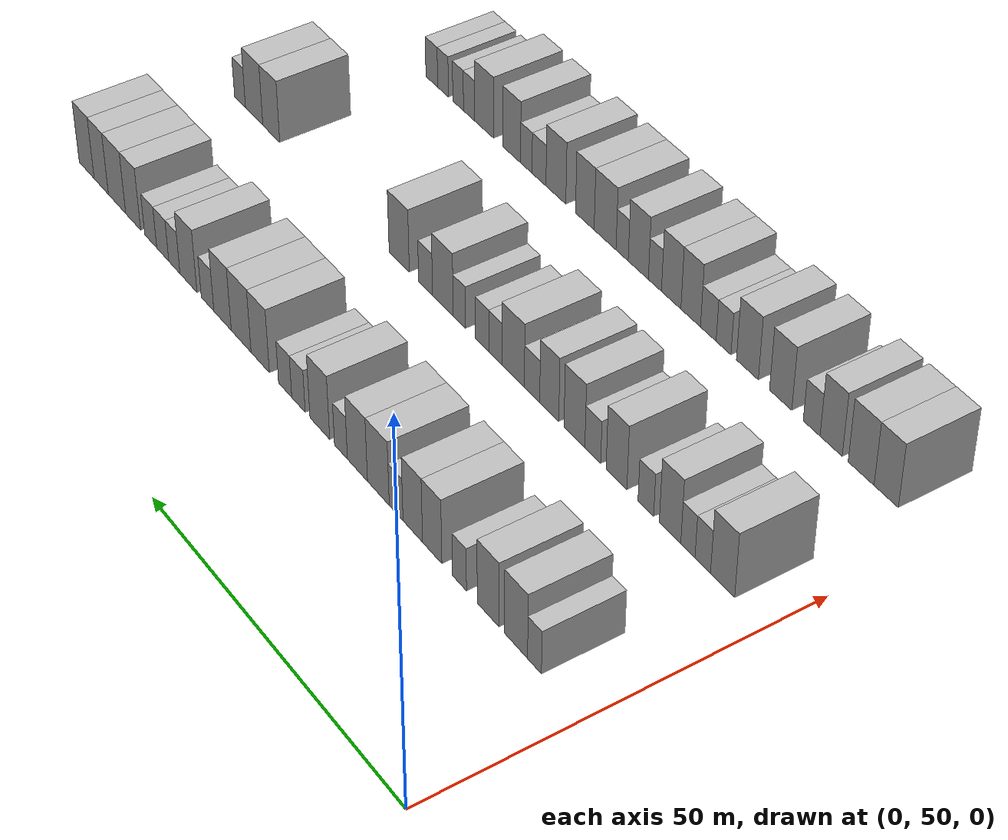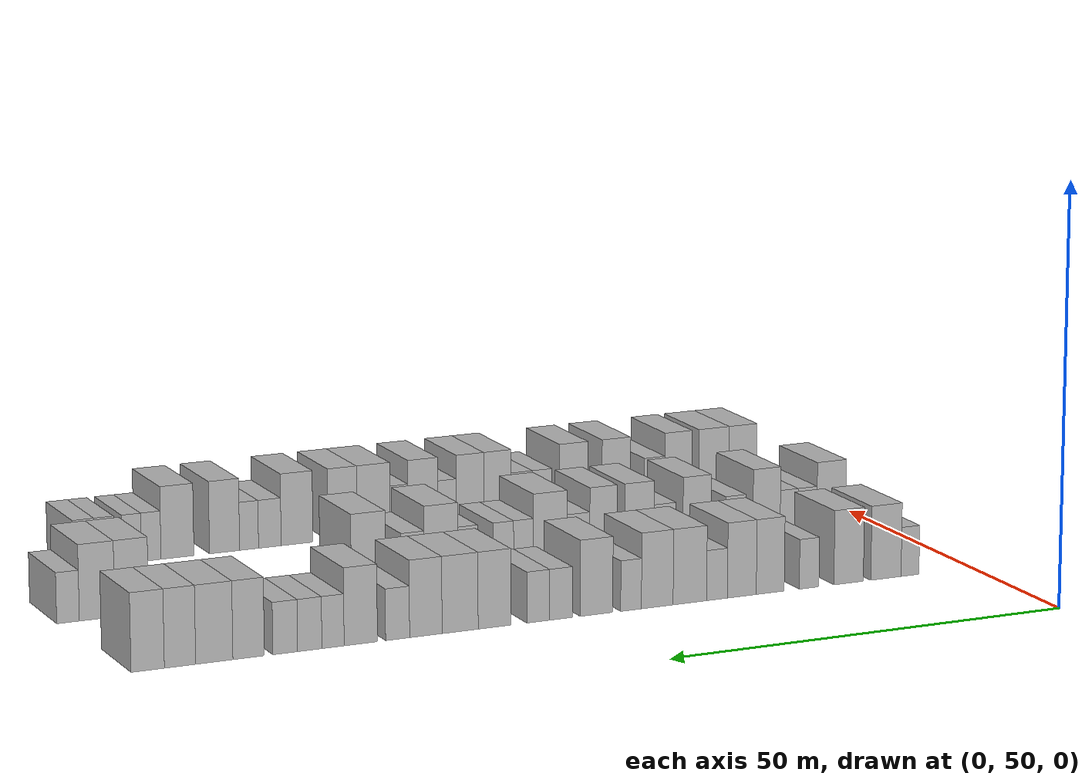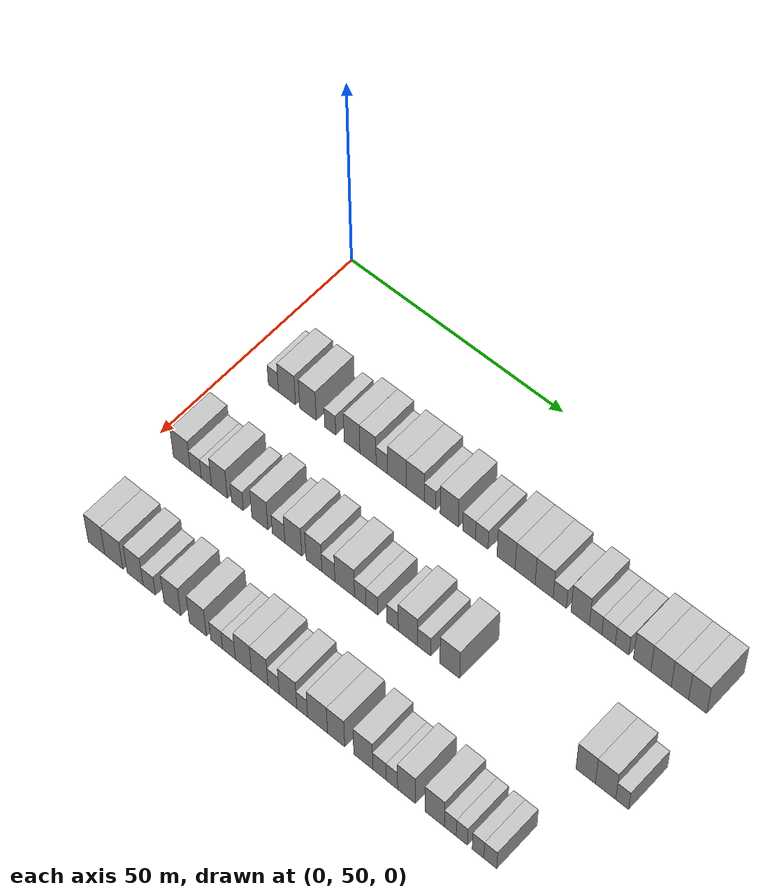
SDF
<sdf version="1.6">
 <world name="default">
  <model name="building_72">
   <static>1</static>
   <pose>25.0000 58.3837 0 0.000000 0.000000 0.000000</pose>
   <link name="link">
    <pose>0 0 3.00 0 0 0</pose>
    <collision name="collision"><geometry><box><size>10.0000 2.4336 6.0000</size></box></geometry></collision>
    <visual name="visual">
     <cast_shadows>0</cast_shadows>
     <geometry><box><size>10.0000 2.4336 6.0000</size></box></geometry>
     <material>
      <script>
       <uri>model://HANNAS_wall/materials/scripts</uri>
       <uri>model://HANNAS_wall/materials/textures</uri>
       <name>vrc/HANNAS_wall</name>
      </script>
     </material>
    </visual>
   </link>
  </model>
  <model name="building_73">
   <static>1</static>
   <pose>25.0000 61.6452 0 0.000000 0.000000 0.000000</pose>
   <link name="link">
    <pose>0 0 4.50 0 0 0</pose>
    <collision name="collision"><geometry><box><size>10.0000 4.0893 9.0000</size></box></geometry></collision>
    <visual name="visual">
     <cast_shadows>0</cast_shadows>
     <geometry><box><size>10.0000 4.0893 9.0000</size></box></geometry>
     <material>
      <script>
       <uri>model://HANNAS_wall/materials/scripts</uri>
       <uri>model://HANNAS_wall/materials/textures</uri>
       <name>vrc/HANNAS_wall</name>
      </script>
     </material>
    </visual>
   </link>
  </model>
  <model name="building_74">
   <static>1</static>
   <pose>25.0000 66.6667 0 0.000000 0.000000 0.000000</pose>
   <link name="link">
    <pose>0 0 4.50 0 0 0</pose>
    <collision name="collision"><geometry><box><size>10.0000 3.9537 9.0000</size></box></geometry></collision>
    <visual name="visual">
     <cast_shadows>0</cast_shadows>
     <geometry><box><size>10.0000 3.9537 9.0000</size></box></geometry>
     <material>
      <script>
       <uri>model://HANNAS_wall/materials/scripts</uri>
       <uri>model://HANNAS_wall/materials/textures</uri>
       <name>vrc/HANNAS_wall</name>
      </script>
     </material>
    </visual>
   </link>
  </model>
  <model name="building_75">
   <static>1</static>
   <pose>25.0000 71.9454 0 0.000000 0.000000 0.000000</pose>
   <link name="link">
    <pose>0 0 3.00 0 0 0</pose>
    <collision name="collision"><geometry><box><size>10.0000 2.6039 6.0000</size></box></geometry></collision>
    <visual name="visual">
     <cast_shadows>0</cast_shadows>
     <geometry><box><size>10.0000 2.6039 6.0000</size></box></geometry>
     <material>
      <script>
       <uri>model://HANNAS_wall/materials/scripts</uri>
       <uri>model://HANNAS_wall/materials/textures</uri>
       <name>vrc/HANNAS_wall</name>
      </script>
     </material>
    </visual>
   </link>
  </model>
  <model name="building_76">
   <static>1</static>
   <pose>25.0000 77.0871 0 0.000000 0.000000 0.000000</pose>
   <link name="link">
    <pose>0 0 4.50 0 0 0</pose>
    <collision name="collision"><geometry><box><size>10.0000 3.6795 9.0000</size></box></geometry></collision>
    <visual name="visual">
     <cast_shadows>0</cast_shadows>
     <geometry><box><size>10.0000 3.6795 9.0000</size></box></geometry>
     <material>
      <script>
       <uri>model://HANNAS_wall/materials/scripts</uri>
       <uri>model://HANNAS_wall/materials/textures</uri>
       <name>vrc/HANNAS_wall</name>
      </script>
     </material>
    </visual>
   </link>
  </model>
  <model name="building_77">
   <static>1</static>
   <pose>25.0000 80.8173 0 0.000000 0.000000 0.000000</pose>
   <link name="link">
    <pose>0 0 4.50 0 0 0</pose>
    <collision name="collision"><geometry><box><size>10.0000 3.7808 9.0000</size></box></geometry></collision>
    <visual name="visual">
     <cast_shadows>0</cast_shadows>
     <geometry><box><size>10.0000 3.7808 9.0000</size></box></geometry>
     <material>
      <script>
       <uri>model://HANNAS_wall/materials/scripts</uri>
       <uri>model://HANNAS_wall/materials/textures</uri>
       <name>vrc/HANNAS_wall</name>
      </script>
     </material>
    </visual>
   </link>
  </model>
  <model name="building_78">
   <static>1</static>
   <pose>25.0000 84.0604 0 0.000000 0.000000 0.000000</pose>
   <link name="link">
    <pose>0 0 3.00 0 0 0</pose>
    <collision name="collision"><geometry><box><size>10.0000 2.7054 6.0000</size></box></geometry></collision>
    <visual name="visual">
     <cast_shadows>0</cast_shadows>
     <geometry><box><size>10.0000 2.7054 6.0000</size></box></geometry>
     <material>
      <script>
       <uri>model://HANNAS_wall/materials/scripts</uri>
       <uri>model://HANNAS_wall/materials/textures</uri>
       <name>vrc/HANNAS_wall</name>
      </script>
     </material>
    </visual>
   </link>
  </model>
  <model name="building_79">
   <static>1</static>
   <pose>25.0000 87.5838 0 0.000000 0.000000 0.000000</pose>
   <link name="link">
    <pose>0 0 4.50 0 0 0</pose>
    <collision name="collision"><geometry><box><size>10.0000 4.3413 9.0000</size></box></geometry></collision>
    <visual name="visual">
     <cast_shadows>0</cast_shadows>
     <geometry><box><size>10.0000 4.3413 9.0000</size></box></geometry>
     <material>
      <script>
       <uri>model://HANNAS_wall/materials/scripts</uri>
       <uri>model://HANNAS_wall/materials/textures</uri>
       <name>vrc/HANNAS_wall</name>
      </script>
     </material>
    </visual>
   </link>
  </model>
  <model name="building_80">
   <static>1</static>
   <pose>25.0000 91.7906 0 0.000000 0.000000 0.000000</pose>
   <link name="link">
    <pose>0 0 4.50 0 0 0</pose>
    <collision name="collision"><geometry><box><size>10.0000 4.0723 9.0000</size></box></geometry></collision>
    <visual name="visual">
     <cast_shadows>0</cast_shadows>
     <geometry><box><size>10.0000 4.0723 9.0000</size></box></geometry>
     <material>
      <script>
       <uri>model://HANNAS_wall/materials/scripts</uri>
       <uri>model://HANNAS_wall/materials/textures</uri>
       <name>vrc/HANNAS_wall</name>
      </script>
     </material>
    </visual>
   </link>
  </model>
  <model name="building_81">
   <static>1</static>
   <pose>25.0000 95.1541 0 0.000000 0.000000 0.000000</pose>
   <link name="link">
    <pose>0 0 3.00 0 0 0</pose>
    <collision name="collision"><geometry><box><size>10.0000 2.6547 6.0000</size></box></geometry></collision>
    <visual name="visual">
     <cast_shadows>0</cast_shadows>
     <geometry><box><size>10.0000 2.6547 6.0000</size></box></geometry>
     <material>
      <script>
       <uri>model://HANNAS_wall/materials/scripts</uri>
       <uri>model://HANNAS_wall/materials/textures</uri>
       <name>vrc/HANNAS_wall</name>
      </script>
     </material>
    </visual>
   </link>
  </model>
  <model name="building_82">
   <static>1</static>
   <pose>25.0000 99.5512 0 0.000000 0.000000 0.000000</pose>
   <link name="link">
    <pose>0 0 4.50 0 0 0</pose>
    <collision name="collision"><geometry><box><size>10.0000 4.1395 9.0000</size></box></geometry></collision>
    <visual name="visual">
     <cast_shadows>0</cast_shadows>
     <geometry><box><size>10.0000 4.1395 9.0000</size></box></geometry>
     <material>
      <script>
       <uri>model://HANNAS_wall/materials/scripts</uri>
       <uri>model://HANNAS_wall/materials/textures</uri>
       <name>vrc/HANNAS_wall</name>
      </script>
     </material>
    </visual>
   </link>
  </model>
  <model name="building_83">
   <static>1</static>
   <pose>25.0000 104.0575 0 0.000000 0.000000 0.000000</pose>
   <link name="link">
    <pose>0 0 3.00 0 0 0</pose>
    <collision name="collision"><geometry><box><size>10.0000 2.8731 6.0000</size></box></geometry></collision>
    <visual name="visual">
     <cast_shadows>0</cast_shadows>
     <geometry><box><size>10.0000 2.8731 6.0000</size></box></geometry>
     <material>
      <script>
       <uri>model://HANNAS_wall/materials/scripts</uri>
       <uri>model://HANNAS_wall/materials/textures</uri>
       <name>vrc/HANNAS_wall</name>
      </script>
     </material>
    </visual>
   </link>
  </model>
  <model name="building_84">
   <static>1</static>
   <pose>25.0000 106.9219 0 0.000000 0.000000 0.000000</pose>
   <link name="link">
    <pose>0 0 3.00 0 0 0</pose>
    <collision name="collision"><geometry><box><size>10.0000 2.8556 6.0000</size></box></geometry></collision>
    <visual name="visual">
     <cast_shadows>0</cast_shadows>
     <geometry><box><size>10.0000 2.8556 6.0000</size></box></geometry>
     <material>
      <script>
       <uri>model://HANNAS_wall/materials/scripts</uri>
       <uri>model://HANNAS_wall/materials/textures</uri>
       <name>vrc/HANNAS_wall</name>
      </script>
     </material>
    </visual>
   </link>
  </model>
  <model name="building_85">
   <static>1</static>
   <pose>25.0000 112.3711 0 0.000000 0.000000 0.000000</pose>
   <link name="link">
    <pose>0 0 4.50 0 0 0</pose>
    <collision name="collision"><geometry><box><size>10.0000 4.0429 9.0000</size></box></geometry></collision>
    <visual name="visual">
     <cast_shadows>0</cast_shadows>
     <geometry><box><size>10.0000 4.0429 9.0000</size></box></geometry>
     <material>
      <script>
       <uri>model://HANNAS_wall/materials/scripts</uri>
       <uri>model://HANNAS_wall/materials/textures</uri>
       <name>vrc/HANNAS_wall</name>
      </script>
     </material>
    </visual>
   </link>
  </model>
  <model name="building_86">
   <static>1</static>
   <pose>25.0000 116.6187 0 0.000000 0.000000 0.000000</pose>
   <link name="link">
    <pose>0 0 4.50 0 0 0</pose>
    <collision name="collision"><geometry><box><size>10.0000 4.4522 9.0000</size></box></geometry></collision>
    <visual name="visual">
     <cast_shadows>0</cast_shadows>
     <geometry><box><size>10.0000 4.4522 9.0000</size></box></geometry>
     <material>
      <script>
       <uri>model://HANNAS_wall/materials/scripts</uri>
       <uri>model://HANNAS_wall/materials/textures</uri>
       <name>vrc/HANNAS_wall</name>
      </script>
     </material>
    </visual>
   </link>
  </model>
  <model name="building_87">
   <static>1</static>
   <pose>25.0000 120.8304 0 0.000000 0.000000 0.000000</pose>
   <link name="link">
    <pose>0 0 4.50 0 0 0</pose>
    <collision name="collision"><geometry><box><size>10.0000 3.9711 9.0000</size></box></geometry></collision>
    <visual name="visual">
     <cast_shadows>0</cast_shadows>
     <geometry><box><size>10.0000 3.9711 9.0000</size></box></geometry>
     <material>
      <script>
       <uri>model://HANNAS_wall/materials/scripts</uri>
       <uri>model://HANNAS_wall/materials/textures</uri>
       <name>vrc/HANNAS_wall</name>
      </script>
     </material>
    </visual>
   </link>
  </model>
  <model name="building_88">
   <static>1</static>
   <pose>25.0000 124.2741 0 0.000000 0.000000 0.000000</pose>
   <link name="link">
    <pose>0 0 3.00 0 0 0</pose>
    <collision name="collision"><geometry><box><size>10.0000 2.9163 6.0000</size></box></geometry></collision>
    <visual name="visual">
     <cast_shadows>0</cast_shadows>
     <geometry><box><size>10.0000 2.9163 6.0000</size></box></geometry>
     <material>
      <script>
       <uri>model://HANNAS_wall/materials/scripts</uri>
       <uri>model://HANNAS_wall/materials/textures</uri>
       <name>vrc/HANNAS_wall</name>
      </script>
     </material>
    </visual>
   </link>
  </model>
  <model name="building_89">
   <static>1</static>
   <pose>25.0000 128.7384 0 0.000000 0.000000 0.000000</pose>
   <link name="link">
    <pose>0 0 4.50 0 0 0</pose>
    <collision name="collision"><geometry><box><size>10.0000 4.0123 9.0000</size></box></geometry></collision>
    <visual name="visual">
     <cast_shadows>0</cast_shadows>
     <geometry><box><size>10.0000 4.0123 9.0000</size></box></geometry>
     <material>
      <script>
       <uri>model://HANNAS_wall/materials/scripts</uri>
       <uri>model://HANNAS_wall/materials/textures</uri>
       <name>vrc/HANNAS_wall</name>
      </script>
     </material>
    </visual>
   </link>
  </model>
  <model name="building_90">
   <static>1</static>
   <pose>25.0000 132.0802 0 0.000000 0.000000 0.000000</pose>
   <link name="link">
    <pose>0 0 3.00 0 0 0</pose>
    <collision name="collision"><geometry><box><size>10.0000 2.6713 6.0000</size></box></geometry></collision>
    <visual name="visual">
     <cast_shadows>0</cast_shadows>
     <geometry><box><size>10.0000 2.6713 6.0000</size></box></geometry>
     <material>
      <script>
       <uri>model://HANNAS_wall/materials/scripts</uri>
       <uri>model://HANNAS_wall/materials/textures</uri>
       <name>vrc/HANNAS_wall</name>
      </script>
     </material>
    </visual>
   </link>
  </model>
  <model name="building_91">
   <static>1</static>
   <pose>25.0000 134.8691 0 0.000000 0.000000 0.000000</pose>
   <link name="link">
    <pose>0 0 3.00 0 0 0</pose>
    <collision name="collision"><geometry><box><size>10.0000 2.9065 6.0000</size></box></geometry></collision>
    <visual name="visual">
     <cast_shadows>0</cast_shadows>
     <geometry><box><size>10.0000 2.9065 6.0000</size></box></geometry>
     <material>
      <script>
       <uri>model://HANNAS_wall/materials/scripts</uri>
       <uri>model://HANNAS_wall/materials/textures</uri>
       <name>vrc/HANNAS_wall</name>
      </script>
     </material>
    </visual>
   </link>
  </model>
  <model name="building_92">
   <static>1</static>
   <pose>25.0000 137.7899 0 0.000000 0.000000 0.000000</pose>
   <link name="link">
    <pose>0 0 3.00 0 0 0</pose>
    <collision name="collision"><geometry><box><size>10.0000 2.9352 6.0000</size></box></geometry></collision>
    <visual name="visual">
     <cast_shadows>0</cast_shadows>
     <geometry><box><size>10.0000 2.9352 6.0000</size></box></geometry>
     <material>
      <script>
       <uri>model://HANNAS_wall/materials/scripts</uri>
       <uri>model://HANNAS_wall/materials/textures</uri>
       <name>vrc/HANNAS_wall</name>
      </script>
     </material>
    </visual>
   </link>
  </model>
  <model name="building_93">
   <static>1</static>
   <pose>25.0000 142.1137 0 0.000000 0.000000 0.000000</pose>
   <link name="link">
    <pose>0 0 4.50 0 0 0</pose>
    <collision name="collision"><geometry><box><size>10.0000 3.7125 9.0000</size></box></geometry></collision>
    <visual name="visual">
     <cast_shadows>0</cast_shadows>
     <geometry><box><size>10.0000 3.7125 9.0000</size></box></geometry>
     <material>
      <script>
       <uri>model://HANNAS_wall/materials/scripts</uri>
       <uri>model://HANNAS_wall/materials/textures</uri>
       <name>vrc/HANNAS_wall</name>
      </script>
     </material>
    </visual>
   </link>
  </model>
  <model name="building_94">
   <static>1</static>
   <pose>25.0000 146.1461 0 0.000000 0.000000 0.000000</pose>
   <link name="link">
    <pose>0 0 4.50 0 0 0</pose>
    <collision name="collision"><geometry><box><size>10.0000 4.3523 9.0000</size></box></geometry></collision>
    <visual name="visual">
     <cast_shadows>0</cast_shadows>
     <geometry><box><size>10.0000 4.3523 9.0000</size></box></geometry>
     <material>
      <script>
       <uri>model://HANNAS_wall/materials/scripts</uri>
       <uri>model://HANNAS_wall/materials/textures</uri>
       <name>vrc/HANNAS_wall</name>
      </script>
     </material>
    </visual>
   </link>
  </model>
  <model name="building_95">
   <static>1</static>
   <pose>25.0000 150.1456 0 0.000000 0.000000 0.000000</pose>
   <link name="link">
    <pose>0 0 4.50 0 0 0</pose>
    <collision name="collision"><geometry><box><size>10.0000 3.6467 9.0000</size></box></geometry></collision>
    <visual name="visual">
     <cast_shadows>0</cast_shadows>
     <geometry><box><size>10.0000 3.6467 9.0000</size></box></geometry>
     <material>
      <script>
       <uri>model://HANNAS_wall/materials/scripts</uri>
       <uri>model://HANNAS_wall/materials/textures</uri>
       <name>vrc/HANNAS_wall</name>
      </script>
     </material>
    </visual>
   </link>
  </model>
  <model name="building_96">
   <static>1</static>
   <pose>25.0000 153.8942 0 0.000000 0.000000 0.000000</pose>
   <link name="link">
    <pose>0 0 4.50 0 0 0</pose>
    <collision name="collision"><geometry><box><size>10.0000 3.8504 9.0000</size></box></geometry></collision>
    <visual name="visual">
     <cast_shadows>0</cast_shadows>
     <geometry><box><size>10.0000 3.8504 9.0000</size></box></geometry>
     <material>
      <script>
       <uri>model://HANNAS_wall/materials/scripts</uri>
       <uri>model://HANNAS_wall/materials/textures</uri>
       <name>vrc/HANNAS_wall</name>
      </script>
     </material>
    </visual>
   </link>
  </model>
  <model name="building_189">
   <static>1</static>
   <pose>47.0000 57.0698 0 0.000000 0.000000 0.000000</pose>
   <link name="link">
    <pose>0 0 4.50 0 0 0</pose>
    <collision name="collision"><geometry><box><size>10.0000 4.0659 9.0000</size></box></geometry></collision>
    <visual name="visual">
     <cast_shadows>0</cast_shadows>
     <geometry><box><size>10.0000 4.0659 9.0000</size></box></geometry>
     <material>
      <script>
       <uri>model://HANNAS_wall/materials/scripts</uri>
       <uri>model://HANNAS_wall/materials/textures</uri>
       <name>vrc/HANNAS_wall</name>
      </script>
     </material>
    </visual>
   </link>
  </model>
  <model name="building_190">
   <static>1</static>
   <pose>47.0000 60.4256 0 0.000000 0.000000 0.000000</pose>
   <link name="link">
    <pose>0 0 3.00 0 0 0</pose>
    <collision name="collision"><geometry><box><size>10.0000 2.6458 6.0000</size></box></geometry></collision>
    <visual name="visual">
     <cast_shadows>0</cast_shadows>
     <geometry><box><size>10.0000 2.6458 6.0000</size></box></geometry>
     <material>
      <script>
       <uri>model://HANNAS_wall/materials/scripts</uri>
       <uri>model://HANNAS_wall/materials/textures</uri>
       <name>vrc/HANNAS_wall</name>
      </script>
     </material>
    </visual>
   </link>
  </model>
  <model name="building_191">
   <static>1</static>
   <pose>47.0000 62.9742 0 0.000000 0.000000 0.000000</pose>
   <link name="link">
    <pose>0 0 3.00 0 0 0</pose>
    <collision name="collision"><geometry><box><size>10.0000 2.4514 6.0000</size></box></geometry></collision>
    <visual name="visual">
     <cast_shadows>0</cast_shadows>
     <geometry><box><size>10.0000 2.4514 6.0000</size></box></geometry>
     <material>
      <script>
       <uri>model://HANNAS_wall/materials/scripts</uri>
       <uri>model://HANNAS_wall/materials/textures</uri>
       <name>vrc/HANNAS_wall</name>
      </script>
     </material>
    </visual>
   </link>
  </model>
  <model name="building_192">
   <static>1</static>
   <pose>47.0000 66.0799 0 0.000000 0.000000 0.000000</pose>
   <link name="link">
    <pose>0 0 4.50 0 0 0</pose>
    <collision name="collision"><geometry><box><size>10.0000 3.7600 9.0000</size></box></geometry></collision>
    <visual name="visual">
     <cast_shadows>0</cast_shadows>
     <geometry><box><size>10.0000 3.7600 9.0000</size></box></geometry>
     <material>
      <script>
       <uri>model://HANNAS_wall/materials/scripts</uri>
       <uri>model://HANNAS_wall/materials/textures</uri>
       <name>vrc/HANNAS_wall</name>
      </script>
     </material>
    </visual>
   </link>
  </model>
  <model name="building_193">
   <static>1</static>
   <pose>47.0000 70.3501 0 0.000000 0.000000 0.000000</pose>
   <link name="link">
    <pose>0 0 3.00 0 0 0</pose>
    <collision name="collision"><geometry><box><size>10.0000 2.7804 6.0000</size></box></geometry></collision>
    <visual name="visual">
     <cast_shadows>0</cast_shadows>
     <geometry><box><size>10.0000 2.7804 6.0000</size></box></geometry>
     <material>
      <script>
       <uri>model://HANNAS_wall/materials/scripts</uri>
       <uri>model://HANNAS_wall/materials/textures</uri>
       <name>vrc/HANNAS_wall</name>
      </script>
     </material>
    </visual>
   </link>
  </model>
  <model name="building_194">
   <static>1</static>
   <pose>47.0000 75.6344 0 0.000000 0.000000 0.000000</pose>
   <link name="link">
    <pose>0 0 4.50 0 0 0</pose>
    <collision name="collision"><geometry><box><size>10.0000 3.7882 9.0000</size></box></geometry></collision>
    <visual name="visual">
     <cast_shadows>0</cast_shadows>
     <geometry><box><size>10.0000 3.7882 9.0000</size></box></geometry>
     <material>
      <script>
       <uri>model://HANNAS_wall/materials/scripts</uri>
       <uri>model://HANNAS_wall/materials/textures</uri>
       <name>vrc/HANNAS_wall</name>
      </script>
     </material>
    </visual>
   </link>
  </model>
  <model name="building_195">
   <static>1</static>
   <pose>47.0000 79.9949 0 0.000000 0.000000 0.000000</pose>
   <link name="link">
    <pose>0 0 3.00 0 0 0</pose>
    <collision name="collision"><geometry><box><size>10.0000 2.9329 6.0000</size></box></geometry></collision>
    <visual name="visual">
     <cast_shadows>0</cast_shadows>
     <geometry><box><size>10.0000 2.9329 6.0000</size></box></geometry>
     <material>
      <script>
       <uri>model://HANNAS_wall/materials/scripts</uri>
       <uri>model://HANNAS_wall/materials/textures</uri>
       <name>vrc/HANNAS_wall</name>
      </script>
     </material>
    </visual>
   </link>
  </model>
  <model name="building_196">
   <static>1</static>
   <pose>47.0000 83.4228 0 0.000000 0.000000 0.000000</pose>
   <link name="link">
    <pose>0 0 4.50 0 0 0</pose>
    <collision name="collision"><geometry><box><size>10.0000 3.9229 9.0000</size></box></geometry></collision>
    <visual name="visual">
     <cast_shadows>0</cast_shadows>
     <geometry><box><size>10.0000 3.9229 9.0000</size></box></geometry>
     <material>
      <script>
       <uri>model://HANNAS_wall/materials/scripts</uri>
       <uri>model://HANNAS_wall/materials/textures</uri>
       <name>vrc/HANNAS_wall</name>
      </script>
     </material>
    </visual>
   </link>
  </model>
  <model name="building_197">
   <static>1</static>
   <pose>47.0000 88.2097 0 0.000000 0.000000 0.000000</pose>
   <link name="link">
    <pose>0 0 4.50 0 0 0</pose>
    <collision name="collision"><geometry><box><size>10.0000 3.6509 9.0000</size></box></geometry></collision>
    <visual name="visual">
     <cast_shadows>0</cast_shadows>
     <geometry><box><size>10.0000 3.6509 9.0000</size></box></geometry>
     <material>
      <script>
       <uri>model://HANNAS_wall/materials/scripts</uri>
       <uri>model://HANNAS_wall/materials/textures</uri>
       <name>vrc/HANNAS_wall</name>
      </script>
     </material>
    </visual>
   </link>
  </model>
  <model name="building_198">
   <static>1</static>
   <pose>47.0000 91.5249 0 0.000000 0.000000 0.000000</pose>
   <link name="link">
    <pose>0 0 3.00 0 0 0</pose>
    <collision name="collision"><geometry><box><size>10.0000 2.9796 6.0000</size></box></geometry></collision>
    <visual name="visual">
     <cast_shadows>0</cast_shadows>
     <geometry><box><size>10.0000 2.9796 6.0000</size></box></geometry>
     <material>
      <script>
       <uri>model://HANNAS_wall/materials/scripts</uri>
       <uri>model://HANNAS_wall/materials/textures</uri>
       <name>vrc/HANNAS_wall</name>
      </script>
     </material>
    </visual>
   </link>
  </model>
  <model name="building_199">
   <static>1</static>
   <pose>47.0000 95.2459 0 0.000000 0.000000 0.000000</pose>
   <link name="link">
    <pose>0 0 4.50 0 0 0</pose>
    <collision name="collision"><geometry><box><size>10.0000 4.4624 9.0000</size></box></geometry></collision>
    <visual name="visual">
     <cast_shadows>0</cast_shadows>
     <geometry><box><size>10.0000 4.4624 9.0000</size></box></geometry>
     <material>
      <script>
       <uri>model://HANNAS_wall/materials/scripts</uri>
       <uri>model://HANNAS_wall/materials/textures</uri>
       <name>vrc/HANNAS_wall</name>
      </script>
     </material>
    </visual>
   </link>
  </model>
  <model name="building_200">
   <static>1</static>
   <pose>47.0000 98.7804 0 0.000000 0.000000 0.000000</pose>
   <link name="link">
    <pose>0 0 3.00 0 0 0</pose>
    <collision name="collision"><geometry><box><size>10.0000 2.6066 6.0000</size></box></geometry></collision>
    <visual name="visual">
     <cast_shadows>0</cast_shadows>
     <geometry><box><size>10.0000 2.6066 6.0000</size></box></geometry>
     <material>
      <script>
       <uri>model://HANNAS_wall/materials/scripts</uri>
       <uri>model://HANNAS_wall/materials/textures</uri>
       <name>vrc/HANNAS_wall</name>
      </script>
     </material>
    </visual>
   </link>
  </model>
  <model name="building_201">
   <static>1</static>
   <pose>47.0000 101.4340 0 0.000000 0.000000 0.000000</pose>
   <link name="link">
    <pose>0 0 3.00 0 0 0</pose>
    <collision name="collision"><geometry><box><size>10.0000 2.7006 6.0000</size></box></geometry></collision>
    <visual name="visual">
     <cast_shadows>0</cast_shadows>
     <geometry><box><size>10.0000 2.7006 6.0000</size></box></geometry>
     <material>
      <script>
       <uri>model://HANNAS_wall/materials/scripts</uri>
       <uri>model://HANNAS_wall/materials/textures</uri>
       <name>vrc/HANNAS_wall</name>
      </script>
     </material>
    </visual>
   </link>
  </model>
  <model name="building_202">
   <static>1</static>
   <pose>47.0000 106.0664 0 0.000000 0.000000 0.000000</pose>
   <link name="link">
    <pose>0 0 3.00 0 0 0</pose>
    <collision name="collision"><geometry><box><size>10.0000 2.5641 6.0000</size></box></geometry></collision>
    <visual name="visual">
     <cast_shadows>0</cast_shadows>
     <geometry><box><size>10.0000 2.5641 6.0000</size></box></geometry>
     <material>
      <script>
       <uri>model://HANNAS_wall/materials/scripts</uri>
       <uri>model://HANNAS_wall/materials/textures</uri>
       <name>vrc/HANNAS_wall</name>
      </script>
     </material>
    </visual>
   </link>
  </model>
  <model name="building_203">
   <static>1</static>
   <pose>47.0000 109.5046 0 0.000000 0.000000 0.000000</pose>
   <link name="link">
    <pose>0 0 4.50 0 0 0</pose>
    <collision name="collision"><geometry><box><size>10.0000 4.3124 9.0000</size></box></geometry></collision>
    <visual name="visual">
     <cast_shadows>0</cast_shadows>
     <geometry><box><size>10.0000 4.3124 9.0000</size></box></geometry>
     <material>
      <script>
       <uri>model://HANNAS_wall/materials/scripts</uri>
       <uri>model://HANNAS_wall/materials/textures</uri>
       <name>vrc/HANNAS_wall</name>
      </script>
     </material>
    </visual>
   </link>
  </model>
  <model name="building_204">
   <static>1</static>
   <pose>47.0000 113.1372 0 0.000000 0.000000 0.000000</pose>
   <link name="link">
    <pose>0 0 3.00 0 0 0</pose>
    <collision name="collision"><geometry><box><size>10.0000 2.9527 6.0000</size></box></geometry></collision>
    <visual name="visual">
     <cast_shadows>0</cast_shadows>
     <geometry><box><size>10.0000 2.9527 6.0000</size></box></geometry>
     <material>
      <script>
       <uri>model://HANNAS_wall/materials/scripts</uri>
       <uri>model://HANNAS_wall/materials/textures</uri>
       <name>vrc/HANNAS_wall</name>
      </script>
     </material>
    </visual>
   </link>
  </model>
  <model name="building_205">
   <static>1</static>
   <pose>47.0000 118.7915 0 0.000000 0.000000 0.000000</pose>
   <link name="link">
    <pose>0 0 4.50 0 0 0</pose>
    <collision name="collision"><geometry><box><size>10.0000 4.3560 9.0000</size></box></geometry></collision>
    <visual name="visual">
     <cast_shadows>0</cast_shadows>
     <geometry><box><size>10.0000 4.3560 9.0000</size></box></geometry>
     <material>
      <script>
       <uri>model://HANNAS_wall/materials/scripts</uri>
       <uri>model://HANNAS_wall/materials/textures</uri>
       <name>vrc/HANNAS_wall</name>
      </script>
     </material>
    </visual>
   </link>
  </model>
  <model name="building_206">
   <static>1</static>
   <pose>47.0000 148.1056 0 0.000000 0.000000 0.000000</pose>
   <link name="link">
    <pose>0 0 4.50 0 0 0</pose>
    <collision name="collision"><geometry><box><size>10.0000 4.0907 9.0000</size></box></geometry></collision>
    <visual name="visual">
     <cast_shadows>0</cast_shadows>
     <geometry><box><size>10.0000 4.0907 9.0000</size></box></geometry>
     <material>
      <script>
       <uri>model://HANNAS_wall/materials/scripts</uri>
       <uri>model://HANNAS_wall/materials/textures</uri>
       <name>vrc/HANNAS_wall</name>
      </script>
     </material>
    </visual>
   </link>
  </model>
  <model name="building_207">
   <static>1</static>
   <pose>47.0000 152.2756 0 0.000000 0.000000 0.000000</pose>
   <link name="link">
    <pose>0 0 4.50 0 0 0</pose>
    <collision name="collision"><geometry><box><size>10.0000 4.2493 9.0000</size></box></geometry></collision>
    <visual name="visual">
     <cast_shadows>0</cast_shadows>
     <geometry><box><size>10.0000 4.2493 9.0000</size></box></geometry>
     <material>
      <script>
       <uri>model://HANNAS_wall/materials/scripts</uri>
       <uri>model://HANNAS_wall/materials/textures</uri>
       <name>vrc/HANNAS_wall</name>
      </script>
     </material>
    </visual>
   </link>
  </model>
  <model name="building_208">
   <static>1</static>
   <pose>47.0000 155.7540 0 0.000000 0.000000 0.000000</pose>
   <link name="link">
    <pose>0 0 3.00 0 0 0</pose>
    <collision name="collision"><geometry><box><size>10.0000 2.7075 6.0000</size></box></geometry></collision>
    <visual name="visual">
     <cast_shadows>0</cast_shadows>
     <geometry><box><size>10.0000 2.7075 6.0000</size></box></geometry>
     <material>
      <script>
       <uri>model://HANNAS_wall/materials/scripts</uri>
       <uri>model://HANNAS_wall/materials/textures</uri>
       <name>vrc/HANNAS_wall</name>
      </script>
     </material>
    </visual>
   </link>
  </model>
  <model name="building_295">
   <static>1</static>
   <pose>69.0000 58.0098 0 0.000000 0.000000 0.000000</pose>
   <link name="link">
    <pose>0 0 4.50 0 0 0</pose>
    <collision name="collision"><geometry><box><size>10.0000 3.9819 9.0000</size></box></geometry></collision>
    <visual name="visual">
     <cast_shadows>0</cast_shadows>
     <geometry><box><size>10.0000 3.9819 9.0000</size></box></geometry>
     <material>
      <script>
       <uri>model://HANNAS_wall/materials/scripts</uri>
       <uri>model://HANNAS_wall/materials/textures</uri>
       <name>vrc/HANNAS_wall</name>
      </script>
     </material>
    </visual>
   </link>
  </model>
  <model name="building_296">
   <static>1</static>
   <pose>69.0000 62.1628 0 0.000000 0.000000 0.000000</pose>
   <link name="link">
    <pose>0 0 4.50 0 0 0</pose>
    <collision name="collision"><geometry><box><size>10.0000 4.3240 9.0000</size></box></geometry></collision>
    <visual name="visual">
     <cast_shadows>0</cast_shadows>
     <geometry><box><size>10.0000 4.3240 9.0000</size></box></geometry>
     <material>
      <script>
       <uri>model://HANNAS_wall/materials/scripts</uri>
       <uri>model://HANNAS_wall/materials/textures</uri>
       <name>vrc/HANNAS_wall</name>
      </script>
     </material>
    </visual>
   </link>
  </model>
  <model name="building_297">
   <static>1</static>
   <pose>69.0000 67.2167 0 0.000000 0.000000 0.000000</pose>
   <link name="link">
    <pose>0 0 4.50 0 0 0</pose>
    <collision name="collision"><geometry><box><size>10.0000 3.7838 9.0000</size></box></geometry></collision>
    <visual name="visual">
     <cast_shadows>0</cast_shadows>
     <geometry><box><size>10.0000 3.7838 9.0000</size></box></geometry>
     <material>
      <script>
       <uri>model://HANNAS_wall/materials/scripts</uri>
       <uri>model://HANNAS_wall/materials/textures</uri>
       <name>vrc/HANNAS_wall</name>
      </script>
     </material>
    </visual>
   </link>
  </model>
  <model name="building_298">
   <static>1</static>
   <pose>69.0000 70.5588 0 0.000000 0.000000 0.000000</pose>
   <link name="link">
    <pose>0 0 3.00 0 0 0</pose>
    <collision name="collision"><geometry><box><size>10.0000 2.9005 6.0000</size></box></geometry></collision>
    <visual name="visual">
     <cast_shadows>0</cast_shadows>
     <geometry><box><size>10.0000 2.9005 6.0000</size></box></geometry>
     <material>
      <script>
       <uri>model://HANNAS_wall/materials/scripts</uri>
       <uri>model://HANNAS_wall/materials/textures</uri>
       <name>vrc/HANNAS_wall</name>
      </script>
     </material>
    </visual>
   </link>
  </model>
  <model name="building_299">
   <static>1</static>
   <pose>69.0000 75.9770 0 0.000000 0.000000 0.000000</pose>
   <link name="link">
    <pose>0 0 4.50 0 0 0</pose>
    <collision name="collision"><geometry><box><size>10.0000 3.9358 9.0000</size></box></geometry></collision>
    <visual name="visual">
     <cast_shadows>0</cast_shadows>
     <geometry><box><size>10.0000 3.9358 9.0000</size></box></geometry>
     <material>
      <script>
       <uri>model://HANNAS_wall/materials/scripts</uri>
       <uri>model://HANNAS_wall/materials/textures</uri>
       <name>vrc/HANNAS_wall</name>
      </script>
     </material>
    </visual>
   </link>
  </model>
  <model name="building_300">
   <static>1</static>
   <pose>69.0000 81.9258 0 0.000000 0.000000 0.000000</pose>
   <link name="link">
    <pose>0 0 4.50 0 0 0</pose>
    <collision name="collision"><geometry><box><size>10.0000 3.9618 9.0000</size></box></geometry></collision>
    <visual name="visual">
     <cast_shadows>0</cast_shadows>
     <geometry><box><size>10.0000 3.9618 9.0000</size></box></geometry>
     <material>
      <script>
       <uri>model://HANNAS_wall/materials/scripts</uri>
       <uri>model://HANNAS_wall/materials/textures</uri>
       <name>vrc/HANNAS_wall</name>
      </script>
     </material>
    </visual>
   </link>
  </model>
  <model name="building_301">
   <static>1</static>
   <pose>69.0000 86.2717 0 0.000000 0.000000 0.000000</pose>
   <link name="link">
    <pose>0 0 3.00 0 0 0</pose>
    <collision name="collision"><geometry><box><size>10.0000 2.7300 6.0000</size></box></geometry></collision>
    <visual name="visual">
     <cast_shadows>0</cast_shadows>
     <geometry><box><size>10.0000 2.7300 6.0000</size></box></geometry>
     <material>
      <script>
       <uri>model://HANNAS_wall/materials/scripts</uri>
       <uri>model://HANNAS_wall/materials/textures</uri>
       <name>vrc/HANNAS_wall</name>
      </script>
     </material>
    </visual>
   </link>
  </model>
  <model name="building_302">
   <static>1</static>
   <pose>69.0000 89.0939 0 0.000000 0.000000 0.000000</pose>
   <link name="link">
    <pose>0 0 3.00 0 0 0</pose>
    <collision name="collision"><geometry><box><size>10.0000 2.9144 6.0000</size></box></geometry></collision>
    <visual name="visual">
     <cast_shadows>0</cast_shadows>
     <geometry><box><size>10.0000 2.9144 6.0000</size></box></geometry>
     <material>
      <script>
       <uri>model://HANNAS_wall/materials/scripts</uri>
       <uri>model://HANNAS_wall/materials/textures</uri>
       <name>vrc/HANNAS_wall</name>
      </script>
     </material>
    </visual>
   </link>
  </model>
  <model name="building_303">
   <static>1</static>
   <pose>69.0000 92.4017 0 0.000000 0.000000 0.000000</pose>
   <link name="link">
    <pose>0 0 4.50 0 0 0</pose>
    <collision name="collision"><geometry><box><size>10.0000 3.7013 9.0000</size></box></geometry></collision>
    <visual name="visual">
     <cast_shadows>0</cast_shadows>
     <geometry><box><size>10.0000 3.7013 9.0000</size></box></geometry>
     <material>
      <script>
       <uri>model://HANNAS_wall/materials/scripts</uri>
       <uri>model://HANNAS_wall/materials/textures</uri>
       <name>vrc/HANNAS_wall</name>
      </script>
     </material>
    </visual>
   </link>
  </model>
  <model name="building_304">
   <static>1</static>
   <pose>69.0000 96.1162 0 0.000000 0.000000 0.000000</pose>
   <link name="link">
    <pose>0 0 4.50 0 0 0</pose>
    <collision name="collision"><geometry><box><size>10.0000 3.7276 9.0000</size></box></geometry></collision>
    <visual name="visual">
     <cast_shadows>0</cast_shadows>
     <geometry><box><size>10.0000 3.7276 9.0000</size></box></geometry>
     <material>
      <script>
       <uri>model://HANNAS_wall/materials/scripts</uri>
       <uri>model://HANNAS_wall/materials/textures</uri>
       <name>vrc/HANNAS_wall</name>
      </script>
     </material>
    </visual>
   </link>
  </model>
  <model name="building_305">
   <static>1</static>
   <pose>69.0000 99.2497 0 0.000000 0.000000 0.000000</pose>
   <link name="link">
    <pose>0 0 3.00 0 0 0</pose>
    <collision name="collision"><geometry><box><size>10.0000 2.5395 6.0000</size></box></geometry></collision>
    <visual name="visual">
     <cast_shadows>0</cast_shadows>
     <geometry><box><size>10.0000 2.5395 6.0000</size></box></geometry>
     <material>
      <script>
       <uri>model://HANNAS_wall/materials/scripts</uri>
       <uri>model://HANNAS_wall/materials/textures</uri>
       <name>vrc/HANNAS_wall</name>
      </script>
     </material>
    </visual>
   </link>
  </model>
  <model name="building_306">
   <static>1</static>
   <pose>69.0000 102.4975 0 0.000000 0.000000 0.000000</pose>
   <link name="link">
    <pose>0 0 4.50 0 0 0</pose>
    <collision name="collision"><geometry><box><size>10.0000 3.9560 9.0000</size></box></geometry></collision>
    <visual name="visual">
     <cast_shadows>0</cast_shadows>
     <geometry><box><size>10.0000 3.9560 9.0000</size></box></geometry>
     <material>
      <script>
       <uri>model://HANNAS_wall/materials/scripts</uri>
       <uri>model://HANNAS_wall/materials/textures</uri>
       <name>vrc/HANNAS_wall</name>
      </script>
     </material>
    </visual>
   </link>
  </model>
  <model name="building_307">
   <static>1</static>
   <pose>69.0000 105.6900 0 0.000000 0.000000 0.000000</pose>
   <link name="link">
    <pose>0 0 3.00 0 0 0</pose>
    <collision name="collision"><geometry><box><size>10.0000 2.4291 6.0000</size></box></geometry></collision>
    <visual name="visual">
     <cast_shadows>0</cast_shadows>
     <geometry><box><size>10.0000 2.4291 6.0000</size></box></geometry>
     <material>
      <script>
       <uri>model://HANNAS_wall/materials/scripts</uri>
       <uri>model://HANNAS_wall/materials/textures</uri>
       <name>vrc/HANNAS_wall</name>
      </script>
     </material>
    </visual>
   </link>
  </model>
  <model name="building_308">
   <static>1</static>
   <pose>69.0000 109.1063 0 0.000000 0.000000 0.000000</pose>
   <link name="link">
    <pose>0 0 4.50 0 0 0</pose>
    <collision name="collision"><geometry><box><size>10.0000 4.4034 9.0000</size></box></geometry></collision>
    <visual name="visual">
     <cast_shadows>0</cast_shadows>
     <geometry><box><size>10.0000 4.4034 9.0000</size></box></geometry>
     <material>
      <script>
       <uri>model://HANNAS_wall/materials/scripts</uri>
       <uri>model://HANNAS_wall/materials/textures</uri>
       <name>vrc/HANNAS_wall</name>
      </script>
     </material>
    </visual>
   </link>
  </model>
  <model name="building_309">
   <static>1</static>
   <pose>69.0000 113.2146 0 0.000000 0.000000 0.000000</pose>
   <link name="link">
    <pose>0 0 4.50 0 0 0</pose>
    <collision name="collision"><geometry><box><size>10.0000 3.8132 9.0000</size></box></geometry></collision>
    <visual name="visual">
     <cast_shadows>0</cast_shadows>
     <geometry><box><size>10.0000 3.8132 9.0000</size></box></geometry>
     <material>
      <script>
       <uri>model://HANNAS_wall/materials/scripts</uri>
       <uri>model://HANNAS_wall/materials/textures</uri>
       <name>vrc/HANNAS_wall</name>
      </script>
     </material>
    </visual>
   </link>
  </model>
  <model name="building_310">
   <static>1</static>
   <pose>69.0000 119.2007 0 0.000000 0.000000 0.000000</pose>
   <link name="link">
    <pose>0 0 4.50 0 0 0</pose>
    <collision name="collision"><geometry><box><size>10.0000 4.1591 9.0000</size></box></geometry></collision>
    <visual name="visual">
     <cast_shadows>0</cast_shadows>
     <geometry><box><size>10.0000 4.1591 9.0000</size></box></geometry>
     <material>
      <script>
       <uri>model://HANNAS_wall/materials/scripts</uri>
       <uri>model://HANNAS_wall/materials/textures</uri>
       <name>vrc/HANNAS_wall</name>
      </script>
     </material>
    </visual>
   </link>
  </model>
  <model name="building_311">
   <static>1</static>
   <pose>69.0000 122.7527 0 0.000000 0.000000 0.000000</pose>
   <link name="link">
    <pose>0 0 3.00 0 0 0</pose>
    <collision name="collision"><geometry><box><size>10.0000 2.9450 6.0000</size></box></geometry></collision>
    <visual name="visual">
     <cast_shadows>0</cast_shadows>
     <geometry><box><size>10.0000 2.9450 6.0000</size></box></geometry>
     <material>
      <script>
       <uri>model://HANNAS_wall/materials/scripts</uri>
       <uri>model://HANNAS_wall/materials/textures</uri>
       <name>vrc/HANNAS_wall</name>
      </script>
     </material>
    </visual>
   </link>
  </model>
  <model name="building_312">
   <static>1</static>
   <pose>69.0000 125.4518 0 0.000000 0.000000 0.000000</pose>
   <link name="link">
    <pose>0 0 3.00 0 0 0</pose>
    <collision name="collision"><geometry><box><size>10.0000 2.4531 6.0000</size></box></geometry></collision>
    <visual name="visual">
     <cast_shadows>0</cast_shadows>
     <geometry><box><size>10.0000 2.4531 6.0000</size></box></geometry>
     <material>
      <script>
       <uri>model://HANNAS_wall/materials/scripts</uri>
       <uri>model://HANNAS_wall/materials/textures</uri>
       <name>vrc/HANNAS_wall</name>
      </script>
     </material>
    </visual>
   </link>
  </model>
  <model name="building_313">
   <static>1</static>
   <pose>69.0000 128.6182 0 0.000000 0.000000 0.000000</pose>
   <link name="link">
    <pose>0 0 4.50 0 0 0</pose>
    <collision name="collision"><geometry><box><size>10.0000 3.8796 9.0000</size></box></geometry></collision>
    <visual name="visual">
     <cast_shadows>0</cast_shadows>
     <geometry><box><size>10.0000 3.8796 9.0000</size></box></geometry>
     <material>
      <script>
       <uri>model://HANNAS_wall/materials/scripts</uri>
       <uri>model://HANNAS_wall/materials/textures</uri>
       <name>vrc/HANNAS_wall</name>
      </script>
     </material>
    </visual>
   </link>
  </model>
  <model name="building_314">
   <static>1</static>
   <pose>69.0000 134.6590 0 0.000000 0.000000 0.000000</pose>
   <link name="link">
    <pose>0 0 4.50 0 0 0</pose>
    <collision name="collision"><geometry><box><size>10.0000 4.2021 9.0000</size></box></geometry></collision>
    <visual name="visual">
     <cast_shadows>0</cast_shadows>
     <geometry><box><size>10.0000 4.2021 9.0000</size></box></geometry>
     <material>
      <script>
       <uri>model://HANNAS_wall/materials/scripts</uri>
       <uri>model://HANNAS_wall/materials/textures</uri>
       <name>vrc/HANNAS_wall</name>
      </script>
     </material>
    </visual>
   </link>
  </model>
  <model name="building_315">
   <static>1</static>
   <pose>69.0000 138.0072 0 0.000000 0.000000 0.000000</pose>
   <link name="link">
    <pose>0 0 3.00 0 0 0</pose>
    <collision name="collision"><geometry><box><size>10.0000 2.4942 6.0000</size></box></geometry></collision>
    <visual name="visual">
     <cast_shadows>0</cast_shadows>
     <geometry><box><size>10.0000 2.4942 6.0000</size></box></geometry>
     <material>
      <script>
       <uri>model://HANNAS_wall/materials/scripts</uri>
       <uri>model://HANNAS_wall/materials/textures</uri>
       <name>vrc/HANNAS_wall</name>
      </script>
     </material>
    </visual>
   </link>
  </model>
  <model name="building_316">
   <static>1</static>
   <pose>69.0000 140.4598 0 0.000000 0.000000 0.000000</pose>
   <link name="link">
    <pose>0 0 3.00 0 0 0</pose>
    <collision name="collision"><geometry><box><size>10.0000 2.4110 6.0000</size></box></geometry></collision>
    <visual name="visual">
     <cast_shadows>0</cast_shadows>
     <geometry><box><size>10.0000 2.4110 6.0000</size></box></geometry>
     <material>
      <script>
       <uri>model://HANNAS_wall/materials/scripts</uri>
       <uri>model://HANNAS_wall/materials/textures</uri>
       <name>vrc/HANNAS_wall</name>
      </script>
     </material>
    </visual>
   </link>
  </model>
  <model name="building_317">
   <static>1</static>
   <pose>69.0000 143.8967 0 0.000000 0.000000 0.000000</pose>
   <link name="link">
    <pose>0 0 3.00 0 0 0</pose>
    <collision name="collision"><geometry><box><size>10.0000 2.4630 6.0000</size></box></geometry></collision>
    <visual name="visual">
     <cast_shadows>0</cast_shadows>
     <geometry><box><size>10.0000 2.4630 6.0000</size></box></geometry>
     <material>
      <script>
       <uri>model://HANNAS_wall/materials/scripts</uri>
       <uri>model://HANNAS_wall/materials/textures</uri>
       <name>vrc/HANNAS_wall</name>
      </script>
     </material>
    </visual>
   </link>
  </model>
  <model name="building_318">
   <static>1</static>
   <pose>69.0000 146.4851 0 0.000000 0.000000 0.000000</pose>
   <link name="link">
    <pose>0 0 3.00 0 0 0</pose>
    <collision name="collision"><geometry><box><size>10.0000 2.7137 6.0000</size></box></geometry></collision>
    <visual name="visual">
     <cast_shadows>0</cast_shadows>
     <geometry><box><size>10.0000 2.7137 6.0000</size></box></geometry>
     <material>
      <script>
       <uri>model://HANNAS_wall/materials/scripts</uri>
       <uri>model://HANNAS_wall/materials/textures</uri>
       <name>vrc/HANNAS_wall</name>
      </script>
     </material>
    </visual>
   </link>
  </model>
 </world>
</sdf>
